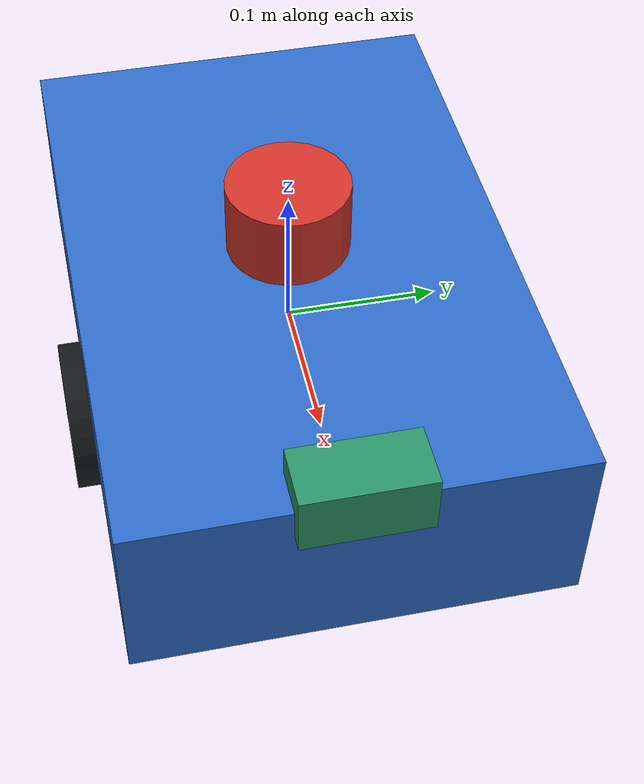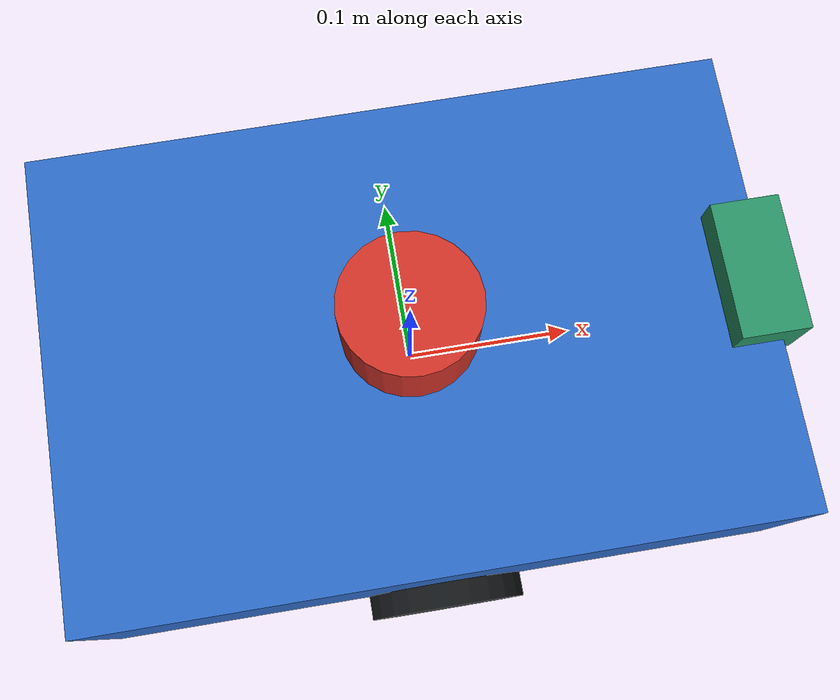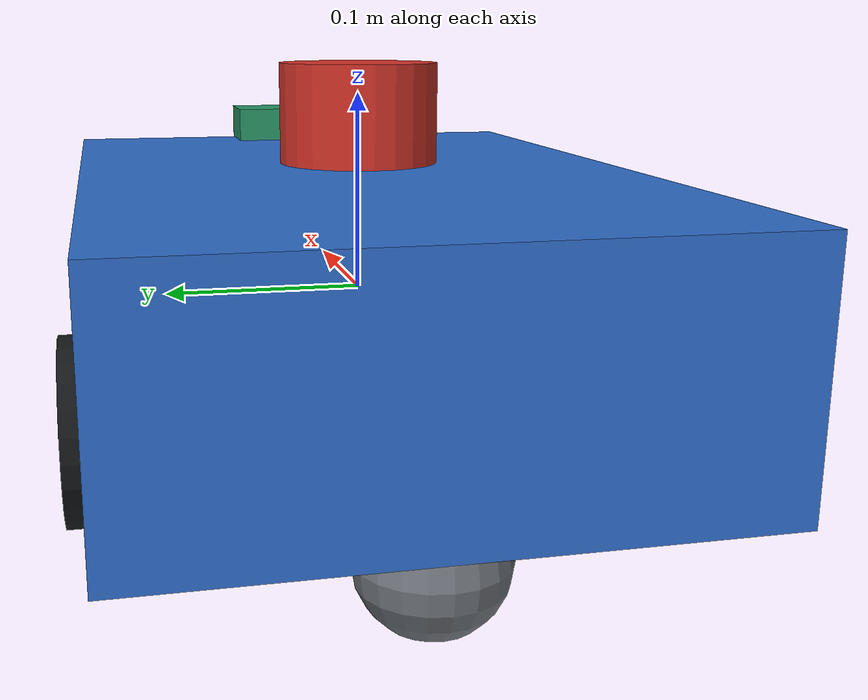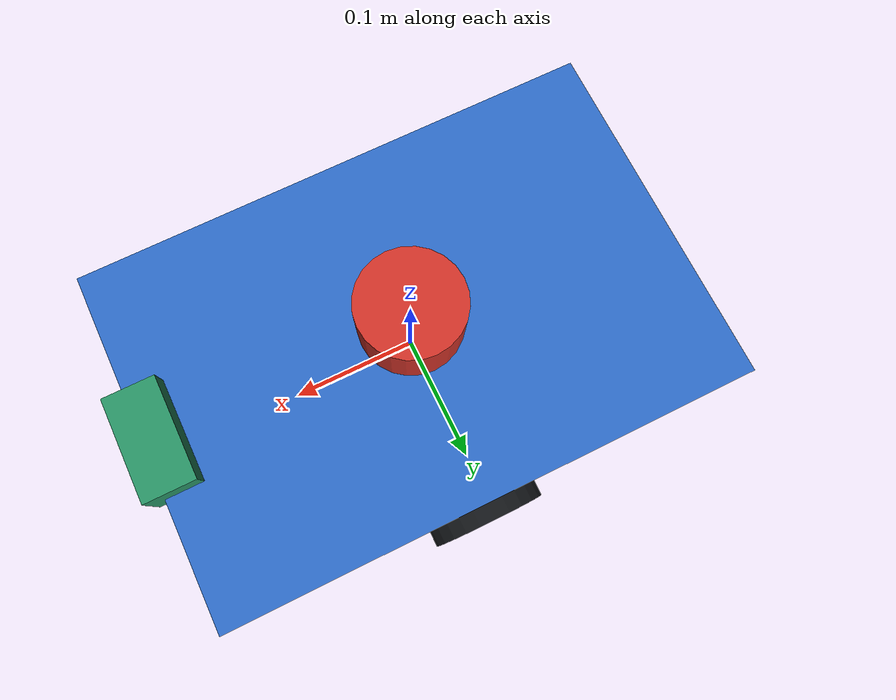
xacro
<?xml version="1.0"?>
<robot name="mybot" xmlns:xacro="http://www.ros.org/wiki/xacro">
  <!-- 平台尺寸参数：修改这里即可整体调整机器人 -->
  <xacro:property name="base_length" value="0.42"/>
  <xacro:property name="base_width" value="0.28"/>
  <xacro:property name="base_height" value="0.12"/>
  <xacro:property name="wheel_radius" value="0.05"/>
  <xacro:property name="wheel_width" value="0.03"/>
  <xacro:property name="wheel_separation" value="0.28"/>
  <xacro:property name="wheel_offset_z" value="-0.07"/>
  <xacro:property name="caster_radius" value="0.035"/>
  <xacro:property name="caster_offset_z" value="-0.085"/>

  <!-- 车体：base_link 的原点位于车体几何中心 -->
  <link name="base_link">
    <visual>
      <origin xyz="0 0 0" rpy="0 0 0"/>
      <geometry>
        <box size="${base_length} ${base_width} ${base_height}"/>
      </geometry>
      <material name="mybot_blue">
        <color rgba="0.18 0.42 0.78 1.0"/>
      </material>
    </visual>
    <collision>
      <origin xyz="0 0 0" rpy="0 0 0"/>
      <geometry>
        <box size="${base_length} ${base_width} ${base_height}"/>
      </geometry>
    </collision>
    <inertial>
      <origin xyz="0 0 0" rpy="0 0 0"/>
      <mass value="5.0"/>
      <inertia ixx="0.090" ixy="0" ixz="0"
               iyy="0.120" iyz="0" izz="0.155"/>
    </inertial>
  </link>

  <!-- 用宏复用左右驱动轮的几何、碰撞和惯性 -->
  <xacro:macro name="wheel" params="prefix reflect">
    <link name="${prefix}_wheel_link">
      <visual>
        <origin xyz="0 0 0" rpy="1.57079632679 0 0"/>
        <geometry>
          <cylinder radius="${wheel_radius}" length="${wheel_width}"/>
        </geometry>
        <material name="mybot_dark">
          <color rgba="0.08 0.09 0.10 1.0"/>
        </material>
      </visual>
      <collision>
        <origin xyz="0 0 0" rpy="1.57079632679 0 0"/>
        <geometry>
          <cylinder radius="${wheel_radius}" length="${wheel_width}"/>
        </geometry>
      </collision>
      <inertial>
        <origin xyz="0 0 0" rpy="0 0 0"/>
        <mass value="0.4"/>
        <inertia ixx="0.0008" ixy="0" ixz="0"
                 iyy="0.0008" iyz="0" izz="0.0005"/>
      </inertial>
    </link>

    <joint name="${prefix}_wheel_joint" type="continuous">
      <parent link="base_link"/>
      <child link="${prefix}_wheel_link"/>
      <origin xyz="0 ${reflect * wheel_separation / 2.0} ${wheel_offset_z}"
              rpy="0 0 0"/>
      <axis xyz="0 1 0"/>
      <limit effort="20.0" velocity="20.0"/>
    </joint>
  </xacro:macro>

  <xacro:wheel prefix="left" reflect="1"/>
  <xacro:wheel prefix="right" reflect="-1"/>

  <!-- 后部万向支撑轮 -->
  <link name="caster_link">
    <visual>
      <origin xyz="0 0 0" rpy="0 0 0"/>
      <geometry>
        <sphere radius="${caster_radius}"/>
      </geometry>
      <material name="mybot_gray">
        <color rgba="0.45 0.47 0.50 1.0"/>
      </material>
    </visual>
    <collision>
      <origin xyz="0 0 0" rpy="0 0 0"/>
      <geometry>
        <sphere radius="${caster_radius}"/>
      </geometry>
    </collision>
    <inertial>
      <origin xyz="0 0 0" rpy="0 0 0"/>
      <mass value="0.2"/>
      <inertia ixx="0.0001" ixy="0" ixz="0"
               iyy="0.0001" iyz="0" izz="0.0001"/>
    </inertial>
  </link>

  <joint name="caster_joint" type="continuous">
    <parent link="base_link"/>
    <child link="caster_link"/>
    <origin xyz="-0.15 0 ${caster_offset_z}"
            rpy="0 0 0"/>
    <axis xyz="0 1 0"/>
    <limit effort="10.0" velocity="20.0"/>
  </joint>

  <!-- 2D 激光雷达 -->
  <link name="laser_frame">
    <visual>
      <origin xyz="0 0 0" rpy="0 0 0"/>
      <geometry>
        <cylinder radius="0.04" length="0.05"/>
      </geometry>
      <material name="mybot_red">
        <color rgba="0.82 0.20 0.16 1.0"/>
      </material>
    </visual>
    <collision>
      <origin xyz="0 0 0" rpy="0 0 0"/>
      <geometry>
        <cylinder radius="0.04" length="0.05"/>
      </geometry>
    </collision>
    <inertial>
      <origin xyz="0 0 0" rpy="0 0 0"/>
      <mass value="0.15"/>
      <inertia ixx="0.0001" ixy="0" ixz="0"
               iyy="0.0001" iyz="0" izz="0.0001"/>
    </inertial>
  </link>

  <joint name="laser_joint" type="fixed">
    <parent link="base_link"/>
    <child link="laser_frame"/>
    <origin xyz="0 0 0.09" rpy="0 0 0"/>
  </joint>

  <!-- 前视相机 -->
  <link name="camera_link">
    <visual>
      <origin xyz="0 0 0" rpy="0 0 0"/>
      <geometry>
        <box size="0.04 0.08 0.04"/>
      </geometry>
      <material name="mybot_green">
        <color rgba="0.16 0.58 0.40 1.0"/>
      </material>
    </visual>
    <collision>
      <origin xyz="0 0 0" rpy="0 0 0"/>
      <geometry>
        <box size="0.04 0.08 0.04"/>
      </geometry>
    </collision>
    <inertial>
      <origin xyz="0 0 0" rpy="0 0 0"/>
      <mass value="0.10"/>
      <inertia ixx="0.0001" ixy="0" ixz="0"
               iyy="0.0001" iyz="0" izz="0.0001"/>
    </inertial>
  </link>

  <joint name="camera_joint" type="fixed">
    <parent link="base_link"/>
    <child link="camera_link"/>
    <origin xyz="0.20 0 0.06" rpy="0 0 0"/>
  </joint>

  <!-- 差速驱动：接收 /cmd_vel，发布 /odom 和 odom -> base_link TF -->
  <gazebo>
    <plugin name="diff_drive" filename="libgazebo_ros_diff_drive.so">
      <ros>
        <namespace>/</namespace>
      </ros>
      <update_rate>50</update_rate>
      <left_joint>left_wheel_joint</left_joint>
      <right_joint>right_wheel_joint</right_joint>
      <wheel_separation>${wheel_separation}</wheel_separation>
      <wheel_diameter>${2.0 * wheel_radius}</wheel_diameter>
      <max_wheel_torque>20.0</max_wheel_torque>
      <max_wheel_acceleration>1.0</max_wheel_acceleration>
      <command_topic>cmd_vel</command_topic>
      <odometry_topic>odom</odometry_topic>
      <odometry_frame>odom</odometry_frame>
      <robot_base_frame>base_link</robot_base_frame>
      <publish_odom>true</publish_odom>
      <publish_odom_tf>true</publish_odom_tf>
      <publish_wheel_tf>false</publish_wheel_tf>
    </plugin>

    <plugin name="gazebo_joint_state_publisher"
            filename="libgazebo_ros_joint_state_publisher.so">
      <update_rate>30</update_rate>
      <joint_name>left_wheel_joint</joint_name>
      <joint_name>right_wheel_joint</joint_name>
      <joint_name>caster_joint</joint_name>
    </plugin>
  </gazebo>

  <!-- 激光雷达传感器与 ROS 插件 -->
  <gazebo reference="laser_frame">
    <material>Gazebo/Red</material>
    <sensor type="ray" name="laser_sensor">
      <always_on>true</always_on>
      <update_rate>10</update_rate>
      <visualize>false</visualize>
      <ray>
        <scan>
          <horizontal>
            <samples>360</samples>
            <resolution>1</resolution>
            <min_angle>-3.14159265359</min_angle>
            <max_angle>3.14159265359</max_angle>
          </horizontal>
        </scan>
        <range>
          <min>0.10</min>
          <max>10.0</max>
          <resolution>0.01</resolution>
        </range>
      </ray>
      <plugin name="laser_controller" filename="libgazebo_ros_ray_sensor.so">
        <ros>
          <remapping>~/out:=scan</remapping>
        </ros>
        <output_type>sensor_msgs/LaserScan</output_type>
        <frame_name>laser_frame</frame_name>
      </plugin>
    </sensor>
  </gazebo>

  <!-- RGB 相机传感器与 ROS 插件 -->
  <gazebo reference="camera_link">
    <material>Gazebo/Green</material>
    <sensor type="camera" name="camera_sensor">
      <always_on>true</always_on>
      <update_rate>30</update_rate>
      <visualize>false</visualize>
      <camera name="camera">
        <horizontal_fov>1.047</horizontal_fov>
        <image>
          <width>640</width>
          <height>480</height>
          <format>R8G8B8</format>
        </image>
        <clip>
          <near>0.05</near>
          <far>20.0</far>
        </clip>
      </camera>
      <plugin name="camera_controller" filename="libgazebo_ros_camera.so">
        <cameraName>camera</cameraName>
        <imageTopicName>image_raw</imageTopicName>
        <cameraInfoTopicName>camera_info</cameraInfoTopicName>
        <frameName>camera_link</frameName>
      </plugin>
    </sensor>
  </gazebo>
</robot>
